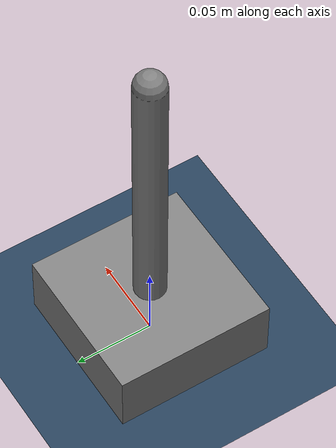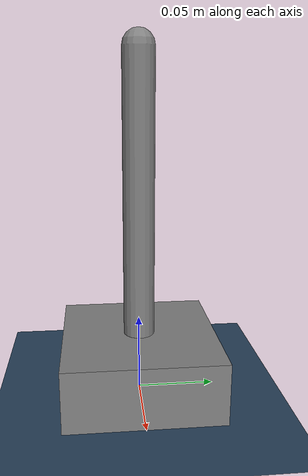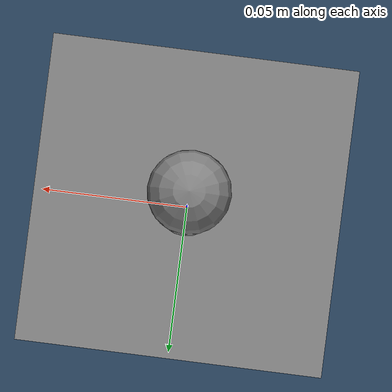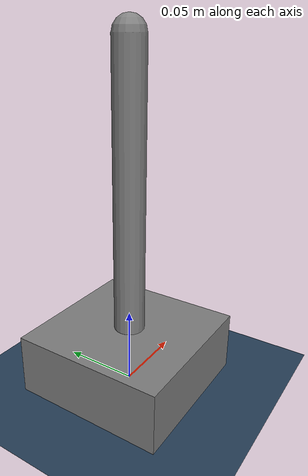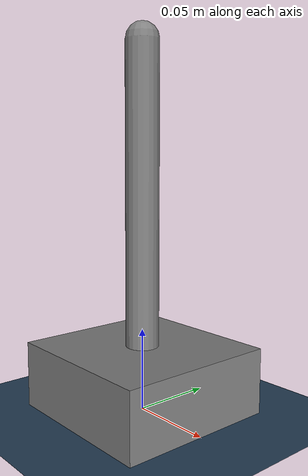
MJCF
<mujoco model="Cart_Pole">
  <option integrator="RK4"/>
  <option gravity="0 0 -0.1"/>

  <asset>
    <texture name="grid" type="2d" builtin="checker" rgb1=".1 .2 .3"
     rgb2=".2 .3 .4" width="300" height="300"/>
    <material name="grid" texture="grid" texrepeat="8 8" reflectance=".2"/>
  </asset>
<worldbody>
    <geom name= "floor" size=".2 .2 .01" type="plane" material="grid"/>
    <light pos="0 0 .6"/>
    <camera name="closeup" pos="0 -.1 .07" xyaxes="1 0 0 0 1 2"/>
    <body name="cart" pos="0 0 .02">
        <joint name="cart_slide"
            type="slide"
            axis="1 0 0"
            limited="true"
            range="-0.15 0.15"/>
        <geom name="cart"
            type="box"
            size=".05 .05 .02"
            mass=".1"/>
        <body name="pole">
            <inertial
                pos="0 0 0.2"
                mass="1"
                diaginertia="4e-6 4e-6 4e-6"/>
            <joint name="pole_hinge"
                type="hinge"
                axis="0 1 0"/>
            <geom name="stem"
                type="capsule"
                size=".01"
                fromto="0 0 0 0 0 0.2"
                mass="0"/>
        </body>
    </body>
</worldbody>
<actuator>
    <motor name="cart_motor"
        joint="cart_slide"
        gear="1"
        forcerange="-.2 .2"
        forcelimited="true"/>
</actuator>
<sensor>
    <jointpos name="cart_pos"
        joint="cart_slide"/>
    <jointpos name="pole_angle"
        joint="pole_hinge"/>
    <jointvel name="cart_vel"
        joint="cart_slide"/>
    <jointvel name="pole_angular_vel"
        joint="pole_hinge"/>
</sensor>
</mujoco>
